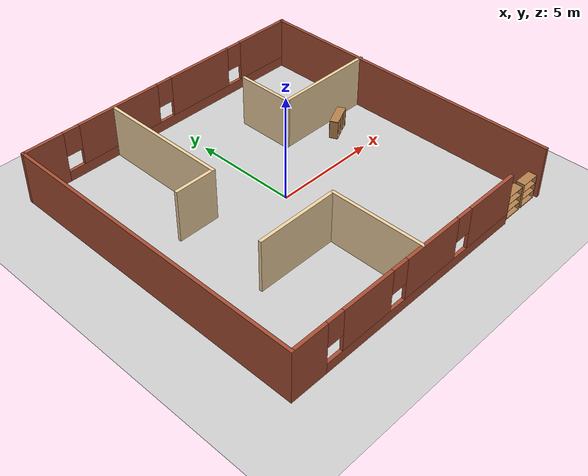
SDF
<sdf version="1.7">
 <world name="default">
  <model name="ground_plane">
   <static>1</static>
   <link name="link">
    <collision name="collision">
     <geometry><plane><normal>0 0 1</normal><size>100 100</size></plane></geometry>
     <surface>
      <contact><collide_bitmask>65535</collide_bitmask></contact>
      <friction><ode><mu>100</mu><mu2>50</mu2></ode></friction>
     </surface>
    </collision>
    <visual name="visual">
     <cast_shadows>0</cast_shadows>
     <geometry><plane><normal>0 0 1</normal><size>100 100</size></plane></geometry>
     <material>
      <script><uri>file://media/materials/scripts/gazebo.material</uri><name>Gazebo/Grey</name></script>
     </material>
    </visual>
   </link>
  </model>
  <model name="bookshelf">
   <static>1</static>
   <link name="link">
    <inertial><mass>1</mass></inertial>
    <collision name="back">
     <pose>0 0.005 0.6 0 -0 0</pose>
     <geometry><box><size>0.9 0.01 1.2</size></box></geometry>
    </collision>
    <visual name="visual1">
     <pose>0 0.005 0.6 0 -0 0</pose>
     <geometry><box><size>0.9 0.01 1.2</size></box></geometry>
     <material>
      <script><uri>file://media/materials/scripts/gazebo.material</uri><name>Gazebo/Wood</name></script>
     </material>
    </visual>
    <collision name="left_side">
     <pose>0.45 -0.195 0.6 0 -0 0</pose>
     <geometry><box><size>0.02 0.4 1.2</size></box></geometry>
    </collision>
    <visual name="visual2">
     <pose>0.45 -0.195 0.6 0 -0 0</pose>
     <geometry><box><size>0.02 0.4 1.2</size></box></geometry>
     <material>
      <script><uri>file://media/materials/scripts/gazebo.material</uri><name>Gazebo/Wood</name></script>
     </material>
    </visual>
    <collision name="right_side">
     <pose>-0.45 -0.195 0.6 0 -0 0</pose>
     <geometry><box><size>0.02 0.4 1.2</size></box></geometry>
    </collision>
    <visual name="visual3">
     <pose>-0.45 -0.195 0.6 0 -0 0</pose>
     <geometry><box><size>0.02 0.4 1.2</size></box></geometry>
     <material>
      <script><uri>file://media/materials/scripts/gazebo.material</uri><name>Gazebo/Wood</name></script>
     </material>
    </visual>
    <collision name="bottom">
     <pose>0 -0.195 0.03 0 -0 0</pose>
     <geometry><box><size>0.88 0.4 0.06</size></box></geometry>
    </collision>
    <visual name="visual4">
     <pose>0 -0.195 0.03 0 -0 0</pose>
     <geometry><box><size>0.88 0.4 0.06</size></box></geometry>
     <material>
      <script><uri>file://media/materials/scripts/gazebo.material</uri><name>Gazebo/Wood</name></script>
     </material>
    </visual>
    <collision name="top">
     <pose>0 -0.195 1.19 0 -0 0</pose>
     <geometry><box><size>0.88 0.4 0.02</size></box></geometry>
    </collision>
    <visual name="visual5">
     <pose>0 -0.195 1.19 0 -0 0</pose>
     <geometry><box><size>0.88 0.4 0.02</size></box></geometry>
     <material>
      <script><uri>file://media/materials/scripts/gazebo.material</uri><name>Gazebo/Wood</name></script>
     </material>
    </visual>
    <collision name="low_shelf">
     <pose>0 -0.195 0.43 0 -0 0</pose>
     <geometry><box><size>0.88 0.4 0.02</size></box></geometry>
    </collision>
    <visual name="visual6">
     <pose>0 -0.195 0.43 0 -0 0</pose>
     <geometry><box><size>0.88 0.4 0.02</size></box></geometry>
     <material>
      <script><uri>file://media/materials/scripts/gazebo.material</uri><name>Gazebo/Wood</name></script>
     </material>
    </visual>
    <collision name="high_shelf">
     <pose>0 -0.195 0.8 0 -0 0</pose>
     <geometry><box><size>0.88 0.4 0.02</size></box></geometry>
    </collision>
    <visual name="visual7">
     <pose>0 -0.195 0.8 0 -0 0</pose>
     <geometry><box><size>0.88 0.4 0.02</size></box></geometry>
     <material>
      <script><uri>file://media/materials/scripts/gazebo.material</uri><name>Gazebo/Wood</name></script>
     </material>
    </visual>
   </link>
   <pose>5.65 -7 0 0 -0 0</pose>
  </model>
  <model name="bookshelf_0">
   <static>1</static>
   <link name="link">
    <inertial><mass>1</mass></inertial>
    <collision name="back">
     <pose>0 0.005 0.6 0 -0 0</pose>
     <geometry><box><size>0.9 0.01 1.2</size></box></geometry>
    </collision>
    <visual name="visual1">
     <pose>0 0.005 0.6 0 -0 0</pose>
     <geometry><box><size>0.9 0.01 1.2</size></box></geometry>
     <material>
      <script><uri>file://media/materials/scripts/gazebo.material</uri><name>Gazebo/Wood</name></script>
     </material>
    </visual>
    <collision name="left_side">
     <pose>0.45 -0.195 0.6 0 -0 0</pose>
     <geometry><box><size>0.02 0.4 1.2</size></box></geometry>
    </collision>
    <visual name="visual2">
     <pose>0.45 -0.195 0.6 0 -0 0</pose>
     <geometry><box><size>0.02 0.4 1.2</size></box></geometry>
     <material>
      <script><uri>file://media/materials/scripts/gazebo.material</uri><name>Gazebo/Wood</name></script>
     </material>
    </visual>
    <collision name="right_side">
     <pose>-0.45 -0.195 0.6 0 -0 0</pose>
     <geometry><box><size>0.02 0.4 1.2</size></box></geometry>
    </collision>
    <visual name="visual3">
     <pose>-0.45 -0.195 0.6 0 -0 0</pose>
     <geometry><box><size>0.02 0.4 1.2</size></box></geometry>
     <material>
      <script><uri>file://media/materials/scripts/gazebo.material</uri><name>Gazebo/Wood</name></script>
     </material>
    </visual>
    <collision name="bottom">
     <pose>0 -0.195 0.03 0 -0 0</pose>
     <geometry><box><size>0.88 0.4 0.06</size></box></geometry>
    </collision>
    <visual name="visual4">
     <pose>0 -0.195 0.03 0 -0 0</pose>
     <geometry><box><size>0.88 0.4 0.06</size></box></geometry>
     <material>
      <script><uri>file://media/materials/scripts/gazebo.material</uri><name>Gazebo/Wood</name></script>
     </material>
    </visual>
    <collision name="top">
     <pose>0 -0.195 1.19 0 -0 0</pose>
     <geometry><box><size>0.88 0.4 0.02</size></box></geometry>
    </collision>
    <visual name="visual5">
     <pose>0 -0.195 1.19 0 -0 0</pose>
     <geometry><box><size>0.88 0.4 0.02</size></box></geometry>
     <material>
      <script><uri>file://media/materials/scripts/gazebo.material</uri><name>Gazebo/Wood</name></script>
     </material>
    </visual>
    <collision name="low_shelf">
     <pose>0 -0.195 0.43 0 -0 0</pose>
     <geometry><box><size>0.88 0.4 0.02</size></box></geometry>
    </collision>
    <visual name="visual6">
     <pose>0 -0.195 0.43 0 -0 0</pose>
     <geometry><box><size>0.88 0.4 0.02</size></box></geometry>
     <material>
      <script><uri>file://media/materials/scripts/gazebo.material</uri><name>Gazebo/Wood</name></script>
     </material>
    </visual>
    <collision name="high_shelf">
     <pose>0 -0.195 0.8 0 -0 0</pose>
     <geometry><box><size>0.88 0.4 0.02</size></box></geometry>
    </collision>
    <visual name="visual7">
     <pose>0 -0.195 0.8 0 -0 0</pose>
     <geometry><box><size>0.88 0.4 0.02</size></box></geometry>
     <material>
      <script><uri>file://media/materials/scripts/gazebo.material</uri><name>Gazebo/Wood</name></script>
     </material>
    </visual>
   </link>
   <pose>6.7 -7 0 0 -0 0</pose>
  </model>
  <model name="bookshelf_2">
   <static>1</static>
   <link name="link">
    <inertial><mass>1</mass></inertial>
    <collision name="back">
     <pose>0 0.005 0.6 0 -0 0</pose>
     <geometry><box><size>0.9 0.01 1.2</size></box></geometry>
    </collision>
    <visual name="visual1">
     <pose>0 0.005 0.6 0 -0 0</pose>
     <geometry><box><size>0.9 0.01 1.2</size></box></geometry>
     <material>
      <script><uri>file://media/materials/scripts/gazebo.material</uri><name>Gazebo/Wood</name></script>
     </material>
    </visual>
    <collision name="left_side">
     <pose>0.45 -0.195 0.6 0 -0 0</pose>
     <geometry><box><size>0.02 0.4 1.2</size></box></geometry>
    </collision>
    <visual name="visual2">
     <pose>0.45 -0.195 0.6 0 -0 0</pose>
     <geometry><box><size>0.02 0.4 1.2</size></box></geometry>
     <material>
      <script><uri>file://media/materials/scripts/gazebo.material</uri><name>Gazebo/Wood</name></script>
     </material>
    </visual>
    <collision name="right_side">
     <pose>-0.45 -0.195 0.6 0 -0 0</pose>
     <geometry><box><size>0.02 0.4 1.2</size></box></geometry>
    </collision>
    <visual name="visual3">
     <pose>-0.45 -0.195 0.6 0 -0 0</pose>
     <geometry><box><size>0.02 0.4 1.2</size></box></geometry>
     <material>
      <script><uri>file://media/materials/scripts/gazebo.material</uri><name>Gazebo/Wood</name></script>
     </material>
    </visual>
    <collision name="bottom">
     <pose>0 -0.195 0.03 0 -0 0</pose>
     <geometry><box><size>0.88 0.4 0.06</size></box></geometry>
    </collision>
    <visual name="visual4">
     <pose>0 -0.195 0.03 0 -0 0</pose>
     <geometry><box><size>0.88 0.4 0.06</size></box></geometry>
     <material>
      <script><uri>file://media/materials/scripts/gazebo.material</uri><name>Gazebo/Wood</name></script>
     </material>
    </visual>
    <collision name="top">
     <pose>0 -0.195 1.19 0 -0 0</pose>
     <geometry><box><size>0.88 0.4 0.02</size></box></geometry>
    </collision>
    <visual name="visual5">
     <pose>0 -0.195 1.19 0 -0 0</pose>
     <geometry><box><size>0.88 0.4 0.02</size></box></geometry>
     <material>
      <script><uri>file://media/materials/scripts/gazebo.material</uri><name>Gazebo/Wood</name></script>
     </material>
    </visual>
    <collision name="low_shelf">
     <pose>0 -0.195 0.43 0 -0 0</pose>
     <geometry><box><size>0.88 0.4 0.02</size></box></geometry>
    </collision>
    <visual name="visual6">
     <pose>0 -0.195 0.43 0 -0 0</pose>
     <geometry><box><size>0.88 0.4 0.02</size></box></geometry>
     <material>
      <script><uri>file://media/materials/scripts/gazebo.material</uri><name>Gazebo/Wood</name></script>
     </material>
    </visual>
    <collision name="high_shelf">
     <pose>0 -0.195 0.8 0 -0 0</pose>
     <geometry><box><size>0.88 0.4 0.02</size></box></geometry>
    </collision>
    <visual name="visual7">
     <pose>0 -0.195 0.8 0 -0 0</pose>
     <geometry><box><size>0.88 0.4 0.02</size></box></geometry>
     <material>
      <script><uri>file://media/materials/scripts/gazebo.material</uri><name>Gazebo/Wood</name></script>
     </material>
    </visual>
   </link>
   <pose>5.48844 2.04536 0.472762 0.432091 -1.56903 -2e-06</pose>
  </model>
  <model name="gMaze6">
   <link name="Wall_0">
    <pose>-0.025043 7.425 0 0 -0 0</pose>
    <visual name="Wall_0_Visual_0">
     <pose>-6.50945 0 1.25 0 -0 0</pose>
     <geometry><box><size>1.98109 0.15 2.5</size></box></geometry>
     <material>
      <script><uri>file://media/materials/scripts/gazebo.material</uri><name>Gazebo/Bricks</name></script>
      <ambient>1 1 1 1</ambient>
     </material>
     <meta><layer>0</layer></meta>
    </visual>
    <collision name="Wall_0_Collision_0">
     <geometry><box><size>1.98109 0.15 2.5</size></box></geometry>
     <pose>-6.50945 0 1.25 0 -0 0</pose>
    </collision>
    <visual name="Wall_0_Visual_1">
     <pose>0.990545 0 0.25 0 -0 0</pose>
     <geometry><box><size>13.0189 0.15 0.5</size></box></geometry>
     <material>
      <script><uri>file://media/materials/scripts/gazebo.material</uri><name>Gazebo/Bricks</name></script>
      <ambient>1 1 1 1</ambient>
     </material>
     <meta><layer>0</layer></meta>
    </visual>
    <collision name="Wall_0_Collision_1">
     <geometry><box><size>13.0189 0.15 0.5</size></box></geometry>
     <pose>0.990545 0 0.25 0 -0 0</pose>
    </collision>
    <visual name="Wall_0_Visual_2">
     <pose>-2.60363 0 1.5 0 -0 0</pose>
     <geometry><box><size>4.23056 0.15 2</size></box></geometry>
     <material>
      <script><uri>file://media/materials/scripts/gazebo.material</uri><name>Gazebo/Bricks</name></script>
      <ambient>1 1 1 1</ambient>
     </material>
     <meta><layer>0</layer></meta>
    </visual>
    <collision name="Wall_0_Collision_2">
     <geometry><box><size>4.23056 0.15 2</size></box></geometry>
     <pose>-2.60363 0 1.5 0 -0 0</pose>
    </collision>
    <visual name="Wall_0_Visual_3">
     <pose>2.02238 0 1.5 0 -0 0</pose>
     <geometry><box><size>3.42145 0.15 2</size></box></geometry>
     <material>
      <script><uri>file://media/materials/scripts/gazebo.material</uri><name>Gazebo/Bricks</name></script>
      <ambient>1 1 1 1</ambient>
     </material>
     <meta><layer>0</layer></meta>
    </visual>
    <collision name="Wall_0_Collision_3">
     <geometry><box><size>3.42145 0.15 2</size></box></geometry>
     <pose>2.02238 0 1.5 0 -0 0</pose>
    </collision>
    <visual name="Wall_0_Visual_4">
     <pose>6.01655 0 1.5 0 -0 0</pose>
     <geometry><box><size>2.9669 0.15 2</size></box></geometry>
     <material>
      <script><uri>file://media/materials/scripts/gazebo.material</uri><name>Gazebo/Bricks</name></script>
      <ambient>1 1 1 1</ambient>
     </material>
     <meta><layer>0</layer></meta>
    </visual>
    <collision name="Wall_0_Collision_4">
     <geometry><box><size>2.9669 0.15 2</size></box></geometry>
     <pose>6.01655 0 1.5 0 -0 0</pose>
    </collision>
    <visual name="Wall_0_Visual_5">
     <pose>-5.11891 0 1.9 0 -0 0</pose>
     <geometry><box><size>0.8 0.15 1.2</size></box></geometry>
     <material>
      <script><uri>file://media/materials/scripts/gazebo.material</uri><name>Gazebo/Bricks</name></script>
      <ambient>1 1 1 1</ambient>
     </material>
     <meta><layer>0</layer></meta>
    </visual>
    <collision name="Wall_0_Collision_5">
     <geometry><box><size>0.8 0.15 1.2</size></box></geometry>
     <pose>-5.11891 0 1.9 0 -0 0</pose>
    </collision>
    <visual name="Wall_0_Visual_6">
     <pose>-0.088347 0 1.9 0 -0 0</pose>
     <geometry><box><size>0.8 0.15 1.2</size></box></geometry>
     <material>
      <script><uri>file://media/materials/scripts/gazebo.material</uri><name>Gazebo/Bricks</name></script>
      <ambient>1 1 1 1</ambient>
     </material>
     <meta><layer>0</layer></meta>
    </visual>
    <collision name="Wall_0_Collision_6">
     <geometry><box><size>0.8 0.15 1.2</size></box></geometry>
     <pose>-0.088347 0 1.9 0 -0 0</pose>
    </collision>
    <visual name="Wall_0_Visual_7">
     <pose>4.1331 0 1.9 0 -0 0</pose>
     <geometry><box><size>0.8 0.15 1.2</size></box></geometry>
     <material>
      <script><uri>file://media/materials/scripts/gazebo.material</uri><name>Gazebo/Bricks</name></script>
      <ambient>1 1 1 1</ambient>
     </material>
     <meta><layer>0</layer></meta>
    </visual>
    <collision name="Wall_0_Collision_7">
     <geometry><box><size>0.8 0.15 1.2</size></box></geometry>
     <pose>4.1331 0 1.9 0 -0 0</pose>
    </collision>
   </link>
   <link name="Wall_1">
    <collision name="Wall_1_Collision">
     <geometry><box><size>15 0.15 2.5</size></box></geometry>
     <pose>0 0 1.25 0 -0 0</pose>
    </collision>
    <visual name="Wall_1_Visual">
     <pose>0 0 1.25 0 -0 0</pose>
     <geometry><box><size>15 0.15 2.5</size></box></geometry>
     <material>
      <script><uri>file://media/materials/scripts/gazebo.material</uri><name>Gazebo/Bricks</name></script>
      <ambient>1 1 1 1</ambient>
     </material>
     <meta><layer>0</layer></meta>
    </visual>
    <pose>7.37984 -0 0 0 -0 -1.5708</pose>
   </link>
   <link name="Wall_3">
    <collision name="Wall_3_Collision">
     <geometry><box><size>15 0.15 2.5</size></box></geometry>
     <pose>0 0 1.25 0 -0 0</pose>
    </collision>
    <visual name="Wall_3_Visual">
     <pose>0 0 1.25 0 -0 0</pose>
     <geometry><box><size>15 0.15 2.5</size></box></geometry>
     <material>
      <script><uri>file://media/materials/scripts/gazebo.material</uri><name>Gazebo/Bricks</name></script>
      <ambient>1 1 1 1</ambient>
     </material>
     <meta><layer>0</layer></meta>
    </visual>
    <pose>-7.45004 -0 0 0 -0 -1.5708</pose>
   </link>
   <link name="Wall_4">
    <pose>-1.27504 -7.425 0 0 -0 0</pose>
    <visual name="Wall_4_Visual_0">
     <pose>-5.37558 0 1.25 0 -0 0</pose>
     <geometry><box><size>1.74884 0.15 2.5</size></box></geometry>
     <material>
      <script><uri>file://media/materials/scripts/gazebo.material</uri><name>Gazebo/Bricks</name></script>
      <ambient>1 1 1 1</ambient>
     </material>
     <meta><layer>0</layer></meta>
    </visual>
    <collision name="Wall_4_Collision_0">
     <geometry><box><size>1.74884 0.15 2.5</size></box></geometry>
     <pose>-5.37558 0 1.25 0 -0 0</pose>
    </collision>
    <visual name="Wall_4_Visual_1">
     <pose>0.87442 0 0.25 0 -0 0</pose>
     <geometry><box><size>10.7512 0.15 0.5</size></box></geometry>
     <material>
      <script><uri>file://media/materials/scripts/gazebo.material</uri><name>Gazebo/Bricks</name></script>
      <ambient>1 1 1 1</ambient>
     </material>
     <meta><layer>0</layer></meta>
    </visual>
    <collision name="Wall_4_Collision_1">
     <geometry><box><size>10.7512 0.15 0.5</size></box></geometry>
     <pose>0.87442 0 0.25 0 -0 0</pose>
    </collision>
    <visual name="Wall_4_Visual_2">
     <pose>-2.40199 0 1.5 0 -0 0</pose>
     <geometry><box><size>2.59834 0.15 2</size></box></geometry>
     <material>
      <script><uri>file://media/materials/scripts/gazebo.material</uri><name>Gazebo/Bricks</name></script>
      <ambient>1 1 1 1</ambient>
     </material>
     <meta><layer>0</layer></meta>
    </visual>
    <collision name="Wall_4_Collision_2">
     <geometry><box><size>2.59834 0.15 2</size></box></geometry>
     <pose>-2.40199 0 1.5 0 -0 0</pose>
    </collision>
    <visual name="Wall_4_Visual_3">
     <pose>1.19683 0 1.5 0 -0 0</pose>
     <geometry><box><size>2.99931 0.15 2</size></box></geometry>
     <material>
      <script><uri>file://media/materials/scripts/gazebo.material</uri><name>Gazebo/Bricks</name></script>
      <ambient>1 1 1 1</ambient>
     </material>
     <meta><layer>0</layer></meta>
    </visual>
    <collision name="Wall_4_Collision_3">
     <geometry><box><size>2.99931 0.15 2</size></box></geometry>
     <pose>1.19683 0 1.5 0 -0 0</pose>
    </collision>
    <visual name="Wall_4_Visual_4">
     <pose>4.87324 0 1.5 0 -0 0</pose>
     <geometry><box><size>2.75352 0.15 2</size></box></geometry>
     <material>
      <script><uri>file://media/materials/scripts/gazebo.material</uri><name>Gazebo/Bricks</name></script>
      <ambient>1 1 1 1</ambient>
     </material>
     <meta><layer>0</layer></meta>
    </visual>
    <collision name="Wall_4_Collision_4">
     <geometry><box><size>2.75352 0.15 2</size></box></geometry>
     <pose>4.87324 0 1.5 0 -0 0</pose>
    </collision>
    <visual name="Wall_4_Visual_5">
     <pose>-4.10116 0 1.9 0 -0 0</pose>
     <geometry><box><size>0.8 0.15 1.2</size></box></geometry>
     <material>
      <script><uri>file://media/materials/scripts/gazebo.material</uri><name>Gazebo/Bricks</name></script>
      <ambient>1 1 1 1</ambient>
     </material>
     <meta><layer>0</layer></meta>
    </visual>
    <collision name="Wall_4_Collision_5">
     <geometry><box><size>0.8 0.15 1.2</size></box></geometry>
     <pose>-4.10116 0 1.9 0 -0 0</pose>
    </collision>
    <visual name="Wall_4_Visual_6">
     <pose>-0.702821 0 1.9 0 -0 0</pose>
     <geometry><box><size>0.8 0.15 1.2</size></box></geometry>
     <material>
      <script><uri>file://media/materials/scripts/gazebo.material</uri><name>Gazebo/Bricks</name></script>
      <ambient>1 1 1 1</ambient>
     </material>
     <meta><layer>0</layer></meta>
    </visual>
    <collision name="Wall_4_Collision_6">
     <geometry><box><size>0.8 0.15 1.2</size></box></geometry>
     <pose>-0.702821 0 1.9 0 -0 0</pose>
    </collision>
    <visual name="Wall_4_Visual_7">
     <pose>3.09648 0 1.9 0 -0 0</pose>
     <geometry><box><size>0.8 0.15 1.2</size></box></geometry>
     <material>
      <script><uri>file://media/materials/scripts/gazebo.material</uri><name>Gazebo/Bricks</name></script>
      <ambient>1 1 1 1</ambient>
     </material>
     <meta><layer>0</layer></meta>
    </visual>
    <collision name="Wall_4_Collision_7">
     <geometry><box><size>0.8 0.15 1.2</size></box></geometry>
     <pose>3.09648 0 1.9 0 -0 0</pose>
    </collision>
   </link>
   <link name="Wall_47">
    <collision name="Wall_47_Collision">
     <geometry><box><size>5 0.15 2.5</size></box></geometry>
     <pose>0 0 1.25 0 -0 0</pose>
    </collision>
    <visual name="Wall_47_Visual">
     <pose>0 0 1.25 0 -0 0</pose>
     <geometry><box><size>5 0.15 2.5</size></box></geometry>
     <material>
      <script><uri>file://media/materials/scripts/gazebo.material</uri><name>Gazebo/Grey</name></script>
      <ambient>0.921569 0.807843 0.615686 1</ambient>
     </material>
     <meta><layer>0</layer></meta>
    </visual>
    <pose>5.02504 2.45185 0 0 -0 3.14159</pose>
   </link>
   <link name="Wall_48">
    <collision name="Wall_48_Collision">
     <geometry><box><size>2.75 0.15 2.5</size></box></geometry>
     <pose>0 0 1.25 0 -0 0</pose>
    </collision>
    <visual name="Wall_48_Visual">
     <pose>0 0 1.25 0 -0 0</pose>
     <geometry><box><size>2.75 0.15 2.5</size></box></geometry>
     <material>
      <script><uri>file://media/materials/scripts/gazebo.material</uri><name>Gazebo/Grey</name></script>
      <ambient>0.921569 0.807843 0.615686 1</ambient>
     </material>
     <meta><layer>0</layer></meta>
    </visual>
    <pose>2.60004 3.75185 0 0 -0 1.5708</pose>
   </link>
   <link name="Wall_50">
    <collision name="Wall_50_Collision">
     <geometry><box><size>6.25 0.15 2.5</size></box></geometry>
     <pose>0 0 1.25 0 -0 0</pose>
    </collision>
    <visual name="Wall_50_Visual">
     <pose>0 0 1.25 0 -0 0</pose>
     <geometry><box><size>6.25 0.15 2.5</size></box></geometry>
     <material>
      <script><uri>file://media/materials/scripts/gazebo.material</uri><name>Gazebo/Grey</name></script>
      <ambient>0.921569 0.807843 0.615686 1</ambient>
     </material>
     <meta><layer>0</layer></meta>
    </visual>
    <pose>-2.89251 4.25652 0 0 -0 -1.5708</pose>
   </link>
   <link name="Wall_51">
    <collision name="Wall_51_Collision">
     <geometry><box><size>2 0.15 2.5</size></box></geometry>
     <pose>0 0 1.25 0 -0 0</pose>
    </collision>
    <visual name="Wall_51_Visual">
     <pose>0 0 1.25 0 -0 0</pose>
     <geometry><box><size>2 0.15 2.5</size></box></geometry>
     <material>
      <script><uri>file://media/materials/scripts/gazebo.material</uri><name>Gazebo/Grey</name></script>
      <ambient>0.921569 0.807843 0.615686 1</ambient>
     </material>
     <meta><layer>0</layer></meta>
    </visual>
    <pose>-3.81751 1.20652 0 0 -0 3.14159</pose>
   </link>
   <link name="Wall_53">
    <collision name="Wall_53_Collision">
     <geometry><box><size>4 0.15 2.5</size></box></geometry>
     <pose>0 0 1.25 0 -0 0</pose>
    </collision>
    <visual name="Wall_53_Visual">
     <pose>0 0 1.25 0 -0 0</pose>
     <geometry><box><size>4 0.15 2.5</size></box></geometry>
     <material>
      <script><uri>file://media/materials/scripts/gazebo.material</uri><name>Gazebo/Grey</name></script>
      <ambient>0.921569 0.807843 0.615686 1</ambient>
     </material>
     <meta><layer>0</layer></meta>
    </visual>
    <pose>-2.55056 -3.07121 0 0 -0 0</pose>
   </link>
   <link name="Wall_54">
    <collision name="Wall_54_Collision">
     <geometry><box><size>4.5 0.15 2.5</size></box></geometry>
     <pose>0 0 1.25 0 -0 0</pose>
    </collision>
    <visual name="Wall_54_Visual">
     <pose>0 0 1.25 0 -0 0</pose>
     <geometry><box><size>4.5 0.15 2.5</size></box></geometry>
     <material>
      <script><uri>file://media/materials/scripts/gazebo.material</uri><name>Gazebo/Grey</name></script>
      <ambient>0.921569 0.807843 0.615686 1</ambient>
     </material>
     <meta><layer>0</layer></meta>
    </visual>
    <pose>-0.625556 -5.24621 0 0 -0 -1.5708</pose>
   </link>
   <static>1</static>
  </model>
 </world>
</sdf>
